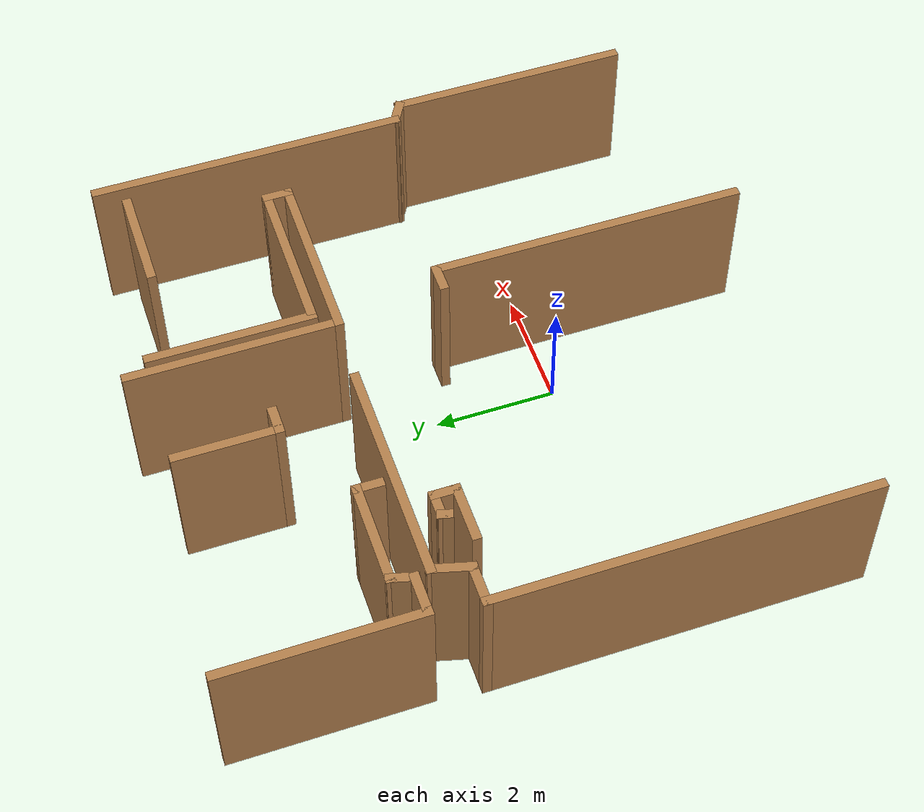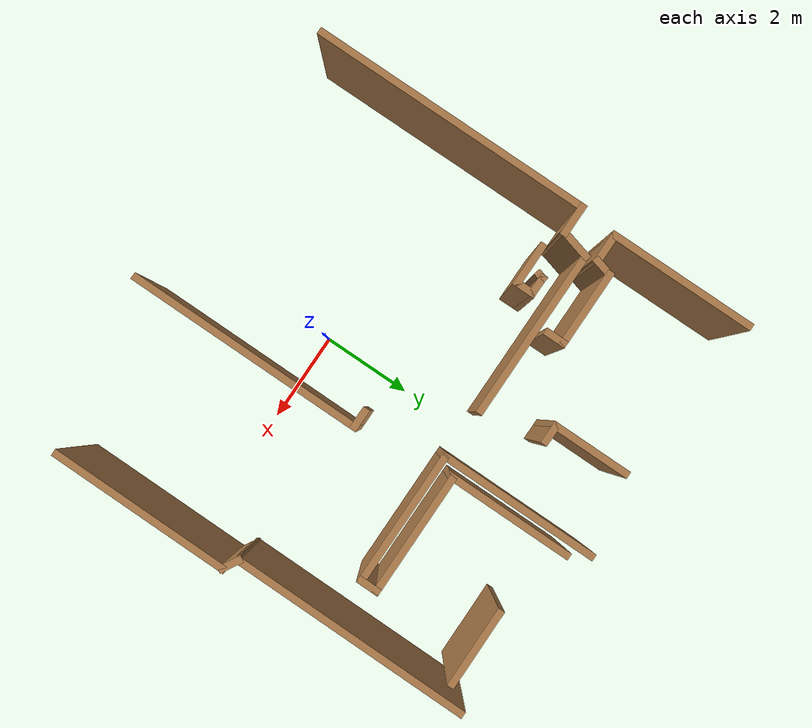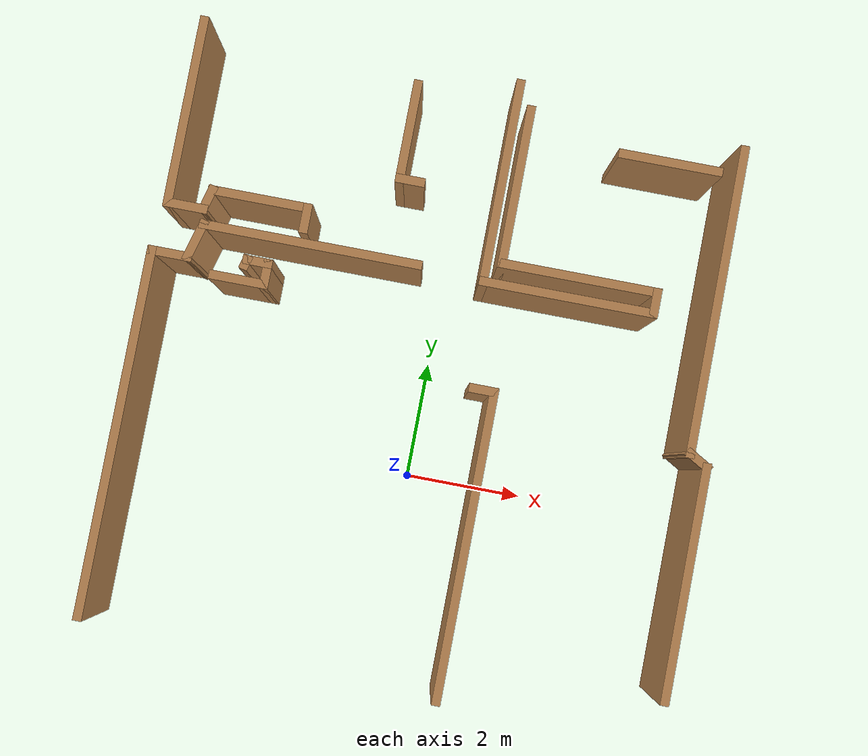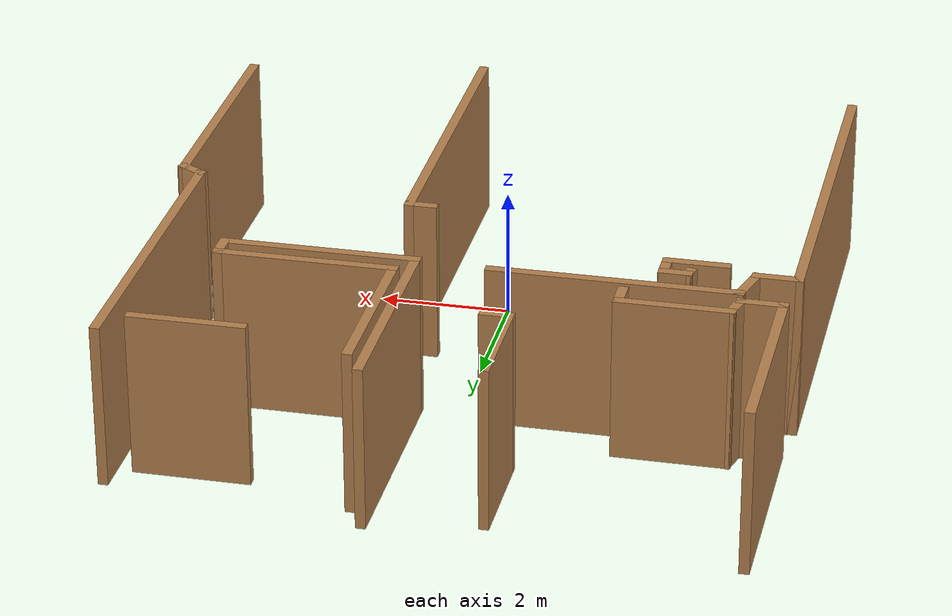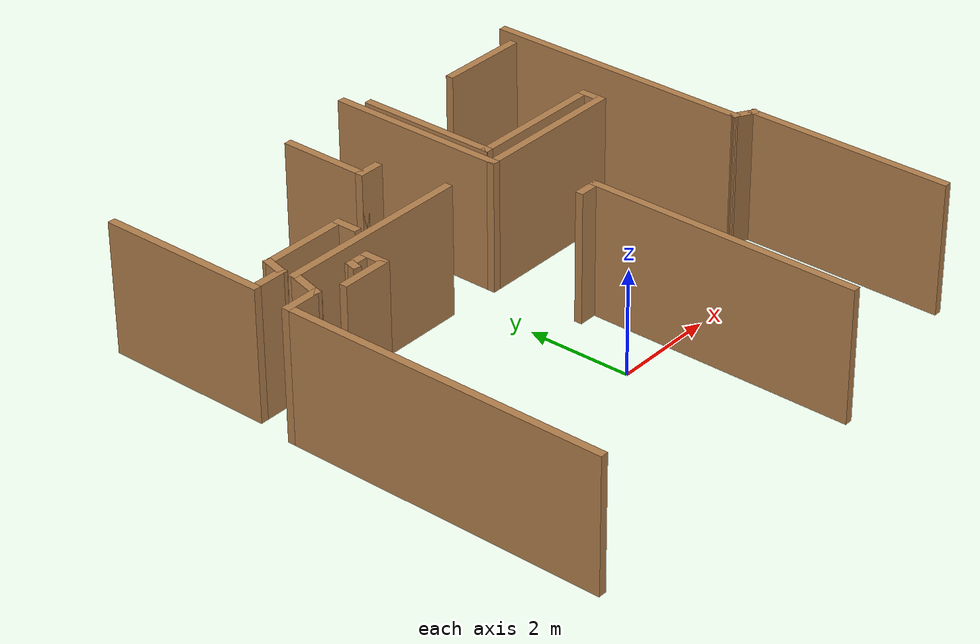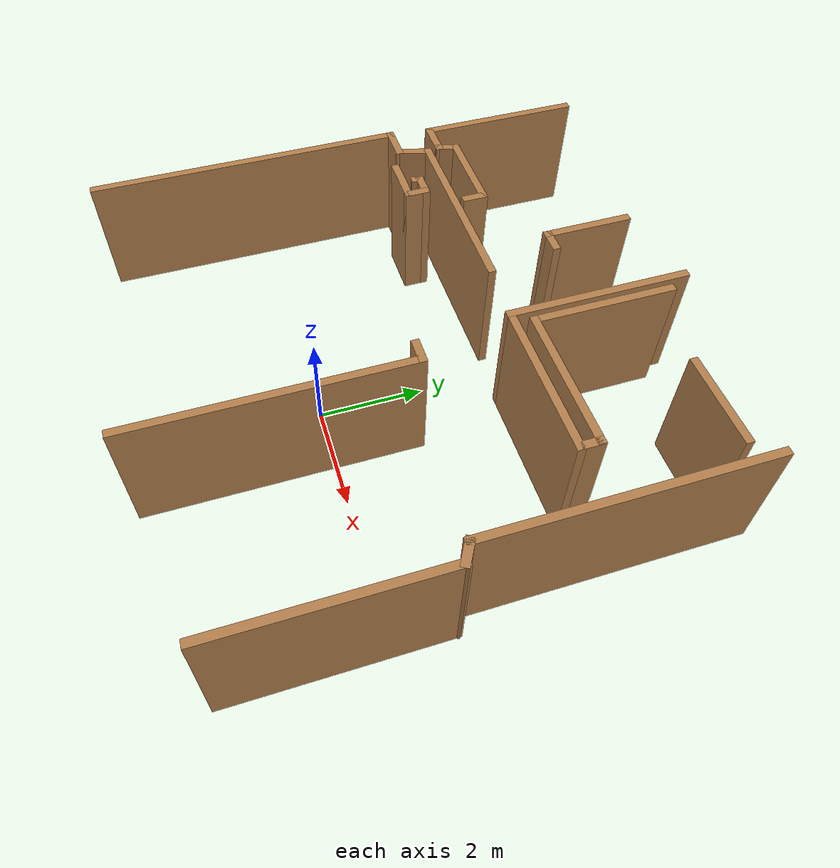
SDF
<sdf version="1.6">
 <model name="map_31">
  <link name="Wall_100">
   <pose>0.643586 5.04256 0 0 -0 1.5708</pose>
   <visual name="Wall_100_Visual">
    <pose>0 0 1.25 0 -0 0</pose>
    <geometry><box><size>3.5 0.15 2.5</size></box></geometry>
    <material>
     <script><uri>file://media/materials/scripts/gazebo.material</uri><name>Gazebo/Wood</name></script>
     <ambient>1 1 1 1</ambient>
     <shader type="pixel"/>
    </material>
    <meta><layer>0</layer></meta>
   </visual>
   <collision name="Wall_100_Collision">
    <pose>0 0 1.25 0 -0 0</pose>
    <geometry><box><size>3.5 0.15 2.5</size></box></geometry>
    <surface>
     <friction>
      <ode><mu>1</mu><mu2>1</mu2><fdir1>0 0 0</fdir1><slip1>0</slip1><slip2>0</slip2></ode>
      <torsional>
       <coefficient>1</coefficient>
       <patch_radius>0</patch_radius>
       <surface_radius>0</surface_radius>
       <use_patch_radius>1</use_patch_radius>
       <ode><slip>0</slip></ode>
      </torsional>
     </friction>
     <bounce><restitution_coefficient>0</restitution_coefficient><threshold>1e+06</threshold></bounce>
     <contact>
      <collide_without_contact>0</collide_without_contact>
      <collide_without_contact_bitmask>1</collide_without_contact_bitmask>
      <collide_bitmask>1</collide_bitmask>
      <ode>
       <soft_cfm>0</soft_cfm>
       <soft_erp>0.2</soft_erp>
       <kp>1e+13</kp>
       <kd>1</kd>
       <max_vel>0.01</max_vel>
       <min_depth>0</min_depth>
      </ode>
      <bullet>
       <split_impulse>1</split_impulse>
       <split_impulse_penetration_threshold>-0.01</split_impulse_penetration_threshold>
       <soft_cfm>0</soft_cfm>
       <soft_erp>0.2</soft_erp>
       <kp>1e+13</kp>
       <kd>1</kd>
      </bullet>
     </contact>
    </surface>
   </collision>
  </link>
  <link name="Wall_120">
   <pose>-0.854189 4.78949 0 0 -0 3.14159</pose>
   <visual name="Wall_120_Visual">
    <pose>0 0 1.25 0 -0 0</pose>
    <geometry><box><size>0.5 0.15 2.5</size></box></geometry>
    <material>
     <script><uri>file://media/materials/scripts/gazebo.material</uri><name>Gazebo/Wood</name></script>
     <ambient>1 1 1 1</ambient>
     <shader type="pixel"/>
    </material>
    <meta><layer>0</layer></meta>
   </visual>
   <collision name="Wall_120_Collision">
    <pose>0 0 1.25 0 -0 0</pose>
    <geometry><box><size>0.5 0.15 2.5</size></box></geometry>
    <surface>
     <friction>
      <ode><mu>1</mu><mu2>1</mu2><fdir1>0 0 0</fdir1><slip1>0</slip1><slip2>0</slip2></ode>
      <torsional>
       <coefficient>1</coefficient>
       <patch_radius>0</patch_radius>
       <surface_radius>0</surface_radius>
       <use_patch_radius>1</use_patch_radius>
       <ode><slip>0</slip></ode>
      </torsional>
     </friction>
     <bounce><restitution_coefficient>0</restitution_coefficient><threshold>1e+06</threshold></bounce>
     <contact>
      <collide_without_contact>0</collide_without_contact>
      <collide_without_contact_bitmask>1</collide_without_contact_bitmask>
      <collide_bitmask>1</collide_bitmask>
      <ode>
       <soft_cfm>0</soft_cfm>
       <soft_erp>0.2</soft_erp>
       <kp>1e+13</kp>
       <kd>1</kd>
       <max_vel>0.01</max_vel>
       <min_depth>0</min_depth>
      </ode>
      <bullet>
       <split_impulse>1</split_impulse>
       <split_impulse_penetration_threshold>-0.01</split_impulse_penetration_threshold>
       <soft_cfm>0</soft_cfm>
       <soft_erp>0.2</soft_erp>
       <kp>1e+13</kp>
       <kd>1</kd>
      </bullet>
     </contact>
    </surface>
   </collision>
  </link>
  <link name="Wall_124">
   <pose>-1.02919 5.58949 0 0 -0 1.5708</pose>
   <visual name="Wall_124_Visual">
    <pose>0 0 1.25 0 -0 0</pose>
    <geometry><box><size>1.75 0.15 2.5</size></box></geometry>
    <material>
     <script><uri>file://media/materials/scripts/gazebo.material</uri><name>Gazebo/Wood</name></script>
     <ambient>1 1 1 1</ambient>
     <shader type="pixel"/>
    </material>
    <meta><layer>0</layer></meta>
   </visual>
   <collision name="Wall_124_Collision">
    <pose>0 0 1.25 0 -0 0</pose>
    <geometry><box><size>1.75 0.15 2.5</size></box></geometry>
    <surface>
     <friction>
      <ode><mu>1</mu><mu2>1</mu2><fdir1>0 0 0</fdir1><slip1>0</slip1><slip2>0</slip2></ode>
      <torsional>
       <coefficient>1</coefficient>
       <patch_radius>0</patch_radius>
       <surface_radius>0</surface_radius>
       <use_patch_radius>1</use_patch_radius>
       <ode><slip>0</slip></ode>
      </torsional>
     </friction>
     <bounce><restitution_coefficient>0</restitution_coefficient><threshold>1e+06</threshold></bounce>
     <contact>
      <collide_without_contact>0</collide_without_contact>
      <collide_without_contact_bitmask>1</collide_without_contact_bitmask>
      <collide_bitmask>1</collide_bitmask>
      <ode>
       <soft_cfm>0</soft_cfm>
       <soft_erp>0.2</soft_erp>
       <kp>1e+13</kp>
       <kd>1</kd>
       <max_vel>0.01</max_vel>
       <min_depth>0</min_depth>
      </ode>
      <bullet>
       <split_impulse>1</split_impulse>
       <split_impulse_penetration_threshold>-0.01</split_impulse_penetration_threshold>
       <soft_cfm>0</soft_cfm>
       <soft_erp>0.2</soft_erp>
       <kp>1e+13</kp>
       <kd>1</kd>
      </bullet>
     </contact>
    </surface>
   </collision>
  </link>
  <link name="Wall_13">
   <pose>-2.26885 3.4345 0 0 -0 3.14159</pose>
   <visual name="Wall_13_Visual">
    <pose>0 0 1.25 0 -0 0</pose>
    <geometry><box><size>3.75 0.15 2.5</size></box></geometry>
    <material>
     <script><uri>file://media/materials/scripts/gazebo.material</uri><name>Gazebo/Wood</name></script>
     <ambient>1 1 1 1</ambient>
     <shader type="pixel"/>
    </material>
    <meta><layer>0</layer></meta>
   </visual>
   <collision name="Wall_13_Collision">
    <pose>0 0 1.25 0 -0 0</pose>
    <geometry><box><size>3.75 0.15 2.5</size></box></geometry>
    <surface>
     <friction>
      <ode><mu>1</mu><mu2>1</mu2><fdir1>0 0 0</fdir1><slip1>0</slip1><slip2>0</slip2></ode>
      <torsional>
       <coefficient>1</coefficient>
       <patch_radius>0</patch_radius>
       <surface_radius>0</surface_radius>
       <use_patch_radius>1</use_patch_radius>
       <ode><slip>0</slip></ode>
      </torsional>
     </friction>
     <bounce><restitution_coefficient>0</restitution_coefficient><threshold>1e+06</threshold></bounce>
     <contact>
      <collide_without_contact>0</collide_without_contact>
      <collide_without_contact_bitmask>1</collide_without_contact_bitmask>
      <collide_bitmask>1</collide_bitmask>
      <ode>
       <soft_cfm>0</soft_cfm>
       <soft_erp>0.2</soft_erp>
       <kp>1e+13</kp>
       <kd>1</kd>
       <max_vel>0.01</max_vel>
       <min_depth>0</min_depth>
      </ode>
      <bullet>
       <split_impulse>1</split_impulse>
       <split_impulse_penetration_threshold>-0.01</split_impulse_penetration_threshold>
       <soft_cfm>0</soft_cfm>
       <soft_erp>0.2</soft_erp>
       <kp>1e+13</kp>
       <kd>1</kd>
      </bullet>
     </contact>
    </surface>
   </collision>
  </link>
  <link name="Wall_130">
   <pose>3.32399 5.88389 0 0 -0 0</pose>
   <visual name="Wall_130_Visual">
    <pose>0 0 1.25 0 -0 0</pose>
    <geometry><box><size>1.75 0.15 2.5</size></box></geometry>
    <material>
     <script><uri>file://media/materials/scripts/gazebo.material</uri><name>Gazebo/Wood</name></script>
     <ambient>1 1 1 1</ambient>
     <shader type="pixel"/>
    </material>
    <meta><layer>0</layer></meta>
   </visual>
   <collision name="Wall_130_Collision">
    <pose>0 0 1.25 0 -0 0</pose>
    <geometry><box><size>1.75 0.15 2.5</size></box></geometry>
    <surface>
     <friction>
      <ode><mu>1</mu><mu2>1</mu2><fdir1>0 0 0</fdir1><slip1>0</slip1><slip2>0</slip2></ode>
      <torsional>
       <coefficient>1</coefficient>
       <patch_radius>0</patch_radius>
       <surface_radius>0</surface_radius>
       <use_patch_radius>1</use_patch_radius>
       <ode><slip>0</slip></ode>
      </torsional>
     </friction>
     <bounce><restitution_coefficient>0</restitution_coefficient><threshold>1e+06</threshold></bounce>
     <contact>
      <collide_without_contact>0</collide_without_contact>
      <collide_without_contact_bitmask>1</collide_without_contact_bitmask>
      <collide_bitmask>1</collide_bitmask>
      <ode>
       <soft_cfm>0</soft_cfm>
       <soft_erp>0.2</soft_erp>
       <kp>1e+13</kp>
       <kd>1</kd>
       <max_vel>0.01</max_vel>
       <min_depth>0</min_depth>
      </ode>
      <bullet>
       <split_impulse>1</split_impulse>
       <split_impulse_penetration_threshold>-0.01</split_impulse_penetration_threshold>
       <soft_cfm>0</soft_cfm>
       <soft_erp>0.2</soft_erp>
       <kp>1e+13</kp>
       <kd>1</kd>
      </bullet>
     </contact>
    </surface>
   </collision>
  </link>
  <link name="Wall_14">
   <pose>-4.1465 3.14472 0 0 0 -1.8326</pose>
   <visual name="Wall_14_Visual">
    <pose>0 0 1.25 0 -0 0</pose>
    <geometry><box><size>0.75 0.15 2.5</size></box></geometry>
    <material>
     <script><uri>file://media/materials/scripts/gazebo.material</uri><name>Gazebo/Wood</name></script>
     <ambient>1 1 1 1</ambient>
     <shader type="pixel"/>
    </material>
    <meta><layer>0</layer></meta>
   </visual>
   <collision name="Wall_14_Collision">
    <pose>0 0 1.25 0 -0 0</pose>
    <geometry><box><size>0.75 0.15 2.5</size></box></geometry>
    <surface>
     <friction>
      <ode><mu>1</mu><mu2>1</mu2><fdir1>0 0 0</fdir1><slip1>0</slip1><slip2>0</slip2></ode>
      <torsional>
       <coefficient>1</coefficient>
       <patch_radius>0</patch_radius>
       <surface_radius>0</surface_radius>
       <use_patch_radius>1</use_patch_radius>
       <ode><slip>0</slip></ode>
      </torsional>
     </friction>
     <bounce><restitution_coefficient>0</restitution_coefficient><threshold>1e+06</threshold></bounce>
     <contact>
      <collide_without_contact>0</collide_without_contact>
      <collide_without_contact_bitmask>1</collide_without_contact_bitmask>
      <collide_bitmask>1</collide_bitmask>
      <ode>
       <soft_cfm>0</soft_cfm>
       <soft_erp>0.2</soft_erp>
       <kp>1e+13</kp>
       <kd>1</kd>
       <max_vel>0.01</max_vel>
       <min_depth>0</min_depth>
      </ode>
      <bullet>
       <split_impulse>1</split_impulse>
       <split_impulse_penetration_threshold>-0.01</split_impulse_penetration_threshold>
       <soft_cfm>0</soft_cfm>
       <soft_erp>0.2</soft_erp>
       <kp>1e+13</kp>
       <kd>1</kd>
      </bullet>
     </contact>
    </surface>
   </collision>
  </link>
  <link name="Wall_141">
   <pose>-3.322 2.64133 0 0 -0 0</pose>
   <visual name="Wall_141_Visual">
    <pose>0 0 1.25 0 -0 0</pose>
    <geometry><box><size>1 0.15 2.5</size></box></geometry>
    <material>
     <script><uri>file://media/materials/scripts/gazebo.material</uri><name>Gazebo/Wood</name></script>
     <ambient>1 1 1 1</ambient>
     <shader type="pixel"/>
    </material>
    <meta><layer>0</layer></meta>
   </visual>
   <collision name="Wall_141_Collision">
    <pose>0 0 1.25 0 -0 0</pose>
    <geometry><box><size>1 0.15 2.5</size></box></geometry>
    <surface>
     <friction>
      <ode><mu>1</mu><mu2>1</mu2><fdir1>0 0 0</fdir1><slip1>0</slip1><slip2>0</slip2></ode>
      <torsional>
       <coefficient>1</coefficient>
       <patch_radius>0</patch_radius>
       <surface_radius>0</surface_radius>
       <use_patch_radius>1</use_patch_radius>
       <ode><slip>0</slip></ode>
      </torsional>
     </friction>
     <bounce><restitution_coefficient>0</restitution_coefficient><threshold>1e+06</threshold></bounce>
     <contact>
      <collide_without_contact>0</collide_without_contact>
      <collide_without_contact_bitmask>1</collide_without_contact_bitmask>
      <collide_bitmask>1</collide_bitmask>
      <ode>
       <soft_cfm>0</soft_cfm>
       <soft_erp>0.2</soft_erp>
       <kp>1e+13</kp>
       <kd>1</kd>
       <max_vel>0.01</max_vel>
       <min_depth>0</min_depth>
      </ode>
      <bullet>
       <split_impulse>1</split_impulse>
       <split_impulse_penetration_threshold>-0.01</split_impulse_penetration_threshold>
       <soft_cfm>0</soft_cfm>
       <soft_erp>0.2</soft_erp>
       <kp>1e+13</kp>
       <kd>1</kd>
      </bullet>
     </contact>
    </surface>
   </collision>
  </link>
  <link name="Wall_142">
   <pose>-2.897 2.81633 0 0 -0 1.5708</pose>
   <visual name="Wall_142_Visual">
    <pose>0 0 1.25 0 -0 0</pose>
    <geometry><box><size>0.5 0.15 2.5</size></box></geometry>
    <material>
     <script><uri>file://media/materials/scripts/gazebo.material</uri><name>Gazebo/Wood</name></script>
     <ambient>1 1 1 1</ambient>
     <shader type="pixel"/>
    </material>
    <meta><layer>0</layer></meta>
   </visual>
   <collision name="Wall_142_Collision">
    <pose>0 0 1.25 0 -0 0</pose>
    <geometry><box><size>0.5 0.15 2.5</size></box></geometry>
    <surface>
     <friction>
      <ode><mu>1</mu><mu2>1</mu2><fdir1>0 0 0</fdir1><slip1>0</slip1><slip2>0</slip2></ode>
      <torsional>
       <coefficient>1</coefficient>
       <patch_radius>0</patch_radius>
       <surface_radius>0</surface_radius>
       <use_patch_radius>1</use_patch_radius>
       <ode><slip>0</slip></ode>
      </torsional>
     </friction>
     <bounce><restitution_coefficient>0</restitution_coefficient><threshold>1e+06</threshold></bounce>
     <contact>
      <collide_without_contact>0</collide_without_contact>
      <collide_without_contact_bitmask>1</collide_without_contact_bitmask>
      <collide_bitmask>1</collide_bitmask>
      <ode>
       <soft_cfm>0</soft_cfm>
       <soft_erp>0.2</soft_erp>
       <kp>1e+13</kp>
       <kd>1</kd>
       <max_vel>0.01</max_vel>
       <min_depth>0</min_depth>
      </ode>
      <bullet>
       <split_impulse>1</split_impulse>
       <split_impulse_penetration_threshold>-0.01</split_impulse_penetration_threshold>
       <soft_cfm>0</soft_cfm>
       <soft_erp>0.2</soft_erp>
       <kp>1e+13</kp>
       <kd>1</kd>
      </bullet>
     </contact>
    </surface>
   </collision>
  </link>
  <link name="Wall_143">
   <pose>-3.072 2.99133 0 0 -0 3.14159</pose>
   <visual name="Wall_143_Visual">
    <pose>0 0 1.25 0 -0 0</pose>
    <geometry><box><size>0.5 0.15 2.5</size></box></geometry>
    <material>
     <script><uri>file://media/materials/scripts/gazebo.material</uri><name>Gazebo/Wood</name></script>
     <ambient>1 1 1 1</ambient>
     <shader type="pixel"/>
    </material>
    <meta><layer>0</layer></meta>
   </visual>
   <collision name="Wall_143_Collision">
    <pose>0 0 1.25 0 -0 0</pose>
    <geometry><box><size>0.5 0.15 2.5</size></box></geometry>
    <surface>
     <friction>
      <ode><mu>1</mu><mu2>1</mu2><fdir1>0 0 0</fdir1><slip1>0</slip1><slip2>0</slip2></ode>
      <torsional>
       <coefficient>1</coefficient>
       <patch_radius>0</patch_radius>
       <surface_radius>0</surface_radius>
       <use_patch_radius>1</use_patch_radius>
       <ode><slip>0</slip></ode>
      </torsional>
     </friction>
     <bounce><restitution_coefficient>0</restitution_coefficient><threshold>1e+06</threshold></bounce>
     <contact>
      <collide_without_contact>0</collide_without_contact>
      <collide_without_contact_bitmask>1</collide_without_contact_bitmask>
      <collide_bitmask>1</collide_bitmask>
      <ode>
       <soft_cfm>0</soft_cfm>
       <soft_erp>0.2</soft_erp>
       <kp>1e+13</kp>
       <kd>1</kd>
       <max_vel>0.01</max_vel>
       <min_depth>0</min_depth>
      </ode>
      <bullet>
       <split_impulse>1</split_impulse>
       <split_impulse_penetration_threshold>-0.01</split_impulse_penetration_threshold>
       <soft_cfm>0</soft_cfm>
       <soft_erp>0.2</soft_erp>
       <kp>1e+13</kp>
       <kd>1</kd>
      </bullet>
     </contact>
    </surface>
   </collision>
  </link>
  <link name="Wall_144">
   <pose>-3.25994 2.94303 0 0 0 -1.8326</pose>
   <visual name="Wall_144_Visual">
    <pose>0 0 1.25 0 -0 0</pose>
    <geometry><box><size>0.25 0.15 2.5</size></box></geometry>
    <material>
     <script><uri>file://media/materials/scripts/gazebo.material</uri><name>Gazebo/Wood</name></script>
     <ambient>1 1 1 1</ambient>
     <shader type="pixel"/>
    </material>
    <meta><layer>0</layer></meta>
   </visual>
   <collision name="Wall_144_Collision">
    <pose>0 0 1.25 0 -0 0</pose>
    <geometry><box><size>0.25 0.15 2.5</size></box></geometry>
    <surface>
     <friction>
      <ode><mu>1</mu><mu2>1</mu2><fdir1>0 0 0</fdir1><slip1>0</slip1><slip2>0</slip2></ode>
      <torsional>
       <coefficient>1</coefficient>
       <patch_radius>0</patch_radius>
       <surface_radius>0</surface_radius>
       <use_patch_radius>1</use_patch_radius>
       <ode><slip>0</slip></ode>
      </torsional>
     </friction>
     <bounce><restitution_coefficient>0</restitution_coefficient><threshold>1e+06</threshold></bounce>
     <contact>
      <collide_without_contact>0</collide_without_contact>
      <collide_without_contact_bitmask>1</collide_without_contact_bitmask>
      <collide_bitmask>1</collide_bitmask>
      <ode>
       <soft_cfm>0</soft_cfm>
       <soft_erp>0.2</soft_erp>
       <kp>1e+13</kp>
       <kd>1</kd>
       <max_vel>0.01</max_vel>
       <min_depth>0</min_depth>
      </ode>
      <bullet>
       <split_impulse>1</split_impulse>
       <split_impulse_penetration_threshold>-0.01</split_impulse_penetration_threshold>
       <soft_cfm>0</soft_cfm>
       <soft_erp>0.2</soft_erp>
       <kp>1e+13</kp>
       <kd>1</kd>
      </bullet>
     </contact>
    </surface>
   </collision>
  </link>
  <link name="Wall_17">
   <pose>-4.52415 2.85494 0 0 -0 3.14159</pose>
   <visual name="Wall_17_Visual">
    <pose>0 0 1.25 0 -0 0</pose>
    <geometry><box><size>0.75 0.15 2.5</size></box></geometry>
    <material>
     <script><uri>file://media/materials/scripts/gazebo.material</uri><name>Gazebo/Wood</name></script>
     <ambient>1 1 1 1</ambient>
     <shader type="pixel"/>
    </material>
    <meta><layer>0</layer></meta>
   </visual>
   <collision name="Wall_17_Collision">
    <pose>0 0 1.25 0 -0 0</pose>
    <geometry><box><size>0.75 0.15 2.5</size></box></geometry>
    <surface>
     <friction>
      <ode><mu>1</mu><mu2>1</mu2><fdir1>0 0 0</fdir1><slip1>0</slip1><slip2>0</slip2></ode>
      <torsional>
       <coefficient>1</coefficient>
       <patch_radius>0</patch_radius>
       <surface_radius>0</surface_radius>
       <use_patch_radius>1</use_patch_radius>
       <ode><slip>0</slip></ode>
      </torsional>
     </friction>
     <bounce><restitution_coefficient>0</restitution_coefficient><threshold>1e+06</threshold></bounce>
     <contact>
      <collide_without_contact>0</collide_without_contact>
      <collide_without_contact_bitmask>1</collide_without_contact_bitmask>
      <collide_bitmask>1</collide_bitmask>
      <ode>
       <soft_cfm>0</soft_cfm>
       <soft_erp>0.2</soft_erp>
       <kp>1e+13</kp>
       <kd>1</kd>
       <max_vel>0.01</max_vel>
       <min_depth>0</min_depth>
      </ode>
      <bullet>
       <split_impulse>1</split_impulse>
       <split_impulse_penetration_threshold>-0.01</split_impulse_penetration_threshold>
       <soft_cfm>0</soft_cfm>
       <soft_erp>0.2</soft_erp>
       <kp>1e+13</kp>
       <kd>1</kd>
      </bullet>
     </contact>
    </surface>
   </collision>
  </link>
  <link name="Wall_18">
   <pose>-4.82415 -0.195058 0 0 0 -1.5708</pose>
   <visual name="Wall_18_Visual">
    <pose>0 0 1.25 0 -0 0</pose>
    <geometry><box><size>6.25 0.15 2.5</size></box></geometry>
    <material>
     <script><uri>file://media/materials/scripts/gazebo.material</uri><name>Gazebo/Wood</name></script>
     <ambient>1 1 1 1</ambient>
     <shader type="pixel"/>
    </material>
    <meta><layer>0</layer></meta>
   </visual>
   <collision name="Wall_18_Collision">
    <pose>0 0 1.25 0 -0 0</pose>
    <geometry><box><size>6.25 0.15 2.5</size></box></geometry>
    <surface>
     <friction>
      <ode><mu>1</mu><mu2>1</mu2><fdir1>0 0 0</fdir1><slip1>0</slip1><slip2>0</slip2></ode>
      <torsional>
       <coefficient>1</coefficient>
       <patch_radius>0</patch_radius>
       <surface_radius>0</surface_radius>
       <use_patch_radius>1</use_patch_radius>
       <ode><slip>0</slip></ode>
      </torsional>
     </friction>
     <bounce><restitution_coefficient>0</restitution_coefficient><threshold>1e+06</threshold></bounce>
     <contact>
      <collide_without_contact>0</collide_without_contact>
      <collide_without_contact_bitmask>1</collide_without_contact_bitmask>
      <collide_bitmask>1</collide_bitmask>
      <ode>
       <soft_cfm>0</soft_cfm>
       <soft_erp>0.2</soft_erp>
       <kp>1e+13</kp>
       <kd>1</kd>
       <max_vel>0.01</max_vel>
       <min_depth>0</min_depth>
      </ode>
      <bullet>
       <split_impulse>1</split_impulse>
       <split_impulse_penetration_threshold>-0.01</split_impulse_penetration_threshold>
       <soft_cfm>0</soft_cfm>
       <soft_erp>0.2</soft_erp>
       <kp>1e+13</kp>
       <kd>1</kd>
      </bullet>
     </contact>
    </surface>
   </collision>
  </link>
  <link name="Wall_5">
   <pose>-4.72196 5.23134 0 0 0 -1.5708</pose>
   <visual name="Wall_5_Visual">
    <pose>0 0 1.25 0 -0 0</pose>
    <geometry><box><size>3.25 0.15 2.5</size></box></geometry>
    <material>
     <script><uri>file://media/materials/scripts/gazebo.material</uri><name>Gazebo/Wood</name></script>
     <ambient>1 1 1 1</ambient>
     <shader type="pixel"/>
    </material>
    <meta><layer>0</layer></meta>
   </visual>
   <collision name="Wall_5_Collision">
    <pose>0 0 1.25 0 -0 0</pose>
    <geometry><box><size>3.25 0.15 2.5</size></box></geometry>
    <surface>
     <friction>
      <ode><mu>1</mu><mu2>1</mu2><fdir1>0 0 0</fdir1><slip1>0</slip1><slip2>0</slip2></ode>
      <torsional>
       <coefficient>1</coefficient>
       <patch_radius>0</patch_radius>
       <surface_radius>0</surface_radius>
       <use_patch_radius>1</use_patch_radius>
       <ode><slip>0</slip></ode>
      </torsional>
     </friction>
     <bounce><restitution_coefficient>0</restitution_coefficient><threshold>1e+06</threshold></bounce>
     <contact>
      <collide_without_contact>0</collide_without_contact>
      <collide_without_contact_bitmask>1</collide_without_contact_bitmask>
      <collide_bitmask>1</collide_bitmask>
      <ode>
       <soft_cfm>0</soft_cfm>
       <soft_erp>0.2</soft_erp>
       <kp>1e+13</kp>
       <kd>1</kd>
       <max_vel>0.01</max_vel>
       <min_depth>0</min_depth>
      </ode>
      <bullet>
       <split_impulse>1</split_impulse>
       <split_impulse_penetration_threshold>-0.01</split_impulse_penetration_threshold>
       <soft_cfm>0</soft_cfm>
       <soft_erp>0.2</soft_erp>
       <kp>1e+13</kp>
       <kd>1</kd>
      </bullet>
     </contact>
    </surface>
   </collision>
  </link>
  <link name="Wall_6">
   <pose>-4.42196 3.68134 0 0 -0 0</pose>
   <visual name="Wall_6_Visual">
    <pose>0 0 1.25 0 -0 0</pose>
    <geometry><box><size>0.75 0.15 2.5</size></box></geometry>
    <material>
     <script><uri>file://media/materials/scripts/gazebo.material</uri><name>Gazebo/Wood</name></script>
     <ambient>1 1 1 1</ambient>
     <shader type="pixel"/>
    </material>
    <meta><layer>0</layer></meta>
   </visual>
   <collision name="Wall_6_Collision">
    <pose>0 0 1.25 0 -0 0</pose>
    <geometry><box><size>0.75 0.15 2.5</size></box></geometry>
    <surface>
     <friction>
      <ode><mu>1</mu><mu2>1</mu2><fdir1>0 0 0</fdir1><slip1>0</slip1><slip2>0</slip2></ode>
      <torsional>
       <coefficient>1</coefficient>
       <patch_radius>0</patch_radius>
       <surface_radius>0</surface_radius>
       <use_patch_radius>1</use_patch_radius>
       <ode><slip>0</slip></ode>
      </torsional>
     </friction>
     <bounce><restitution_coefficient>0</restitution_coefficient><threshold>1e+06</threshold></bounce>
     <contact>
      <collide_without_contact>0</collide_without_contact>
      <collide_without_contact_bitmask>1</collide_without_contact_bitmask>
      <collide_bitmask>1</collide_bitmask>
      <ode>
       <soft_cfm>0</soft_cfm>
       <soft_erp>0.2</soft_erp>
       <kp>1e+13</kp>
       <kd>1</kd>
       <max_vel>0.01</max_vel>
       <min_depth>0</min_depth>
      </ode>
      <bullet>
       <split_impulse>1</split_impulse>
       <split_impulse_penetration_threshold>-0.01</split_impulse_penetration_threshold>
       <soft_cfm>0</soft_cfm>
       <soft_erp>0.2</soft_erp>
       <kp>1e+13</kp>
       <kd>1</kd>
      </bullet>
     </contact>
    </surface>
   </collision>
  </link>
  <link name="Wall_7">
   <pose>-4.07667 3.85038 0 0 -0 1.309</pose>
   <visual name="Wall_7_Visual">
    <pose>0 0 1.25 0 -0 0</pose>
    <geometry><box><size>0.5 0.15 2.5</size></box></geometry>
    <material>
     <script><uri>file://media/materials/scripts/gazebo.material</uri><name>Gazebo/Wood</name></script>
     <ambient>1 1 1 1</ambient>
     <shader type="pixel"/>
    </material>
    <meta><layer>0</layer></meta>
   </visual>
   <collision name="Wall_7_Collision">
    <pose>0 0 1.25 0 -0 0</pose>
    <geometry><box><size>0.5 0.15 2.5</size></box></geometry>
    <surface>
     <friction>
      <ode><mu>1</mu><mu2>1</mu2><fdir1>0 0 0</fdir1><slip1>0</slip1><slip2>0</slip2></ode>
      <torsional>
       <coefficient>1</coefficient>
       <patch_radius>0</patch_radius>
       <surface_radius>0</surface_radius>
       <use_patch_radius>1</use_patch_radius>
       <ode><slip>0</slip></ode>
      </torsional>
     </friction>
     <bounce><restitution_coefficient>0</restitution_coefficient><threshold>1e+06</threshold></bounce>
     <contact>
      <collide_without_contact>0</collide_without_contact>
      <collide_without_contact_bitmask>1</collide_without_contact_bitmask>
      <collide_bitmask>1</collide_bitmask>
      <ode>
       <soft_cfm>0</soft_cfm>
       <soft_erp>0.2</soft_erp>
       <kp>1e+13</kp>
       <kd>1</kd>
       <max_vel>0.01</max_vel>
       <min_depth>0</min_depth>
      </ode>
      <bullet>
       <split_impulse>1</split_impulse>
       <split_impulse_penetration_threshold>-0.01</split_impulse_penetration_threshold>
       <soft_cfm>0</soft_cfm>
       <soft_erp>0.2</soft_erp>
       <kp>1e+13</kp>
       <kd>1</kd>
      </bullet>
     </contact>
    </surface>
   </collision>
  </link>
  <link name="Wall_8">
   <pose>-3.23137 4.01941 0 0 -0 0</pose>
   <visual name="Wall_8_Visual">
    <pose>0 0 1.25 0 -0 0</pose>
    <geometry><box><size>1.75 0.15 2.5</size></box></geometry>
    <material>
     <script><uri>file://media/materials/scripts/gazebo.material</uri><name>Gazebo/Wood</name></script>
     <ambient>1 1 1 1</ambient>
     <shader type="pixel"/>
    </material>
    <meta><layer>0</layer></meta>
   </visual>
   <collision name="Wall_8_Collision">
    <pose>0 0 1.25 0 -0 0</pose>
    <geometry><box><size>1.75 0.15 2.5</size></box></geometry>
    <surface>
     <friction>
      <ode><mu>1</mu><mu2>1</mu2><fdir1>0 0 0</fdir1><slip1>0</slip1><slip2>0</slip2></ode>
      <torsional>
       <coefficient>1</coefficient>
       <patch_radius>0</patch_radius>
       <surface_radius>0</surface_radius>
       <use_patch_radius>1</use_patch_radius>
       <ode><slip>0</slip></ode>
      </torsional>
     </friction>
     <bounce><restitution_coefficient>0</restitution_coefficient><threshold>1e+06</threshold></bounce>
     <contact>
      <collide_without_contact>0</collide_without_contact>
      <collide_without_contact_bitmask>1</collide_without_contact_bitmask>
      <collide_bitmask>1</collide_bitmask>
      <ode>
       <soft_cfm>0</soft_cfm>
       <soft_erp>0.2</soft_erp>
       <kp>1e+13</kp>
       <kd>1</kd>
       <max_vel>0.01</max_vel>
       <min_depth>0</min_depth>
      </ode>
      <bullet>
       <split_impulse>1</split_impulse>
       <split_impulse_penetration_threshold>-0.01</split_impulse_penetration_threshold>
       <soft_cfm>0</soft_cfm>
       <soft_erp>0.2</soft_erp>
       <kp>1e+13</kp>
       <kd>1</kd>
      </bullet>
     </contact>
    </surface>
   </collision>
  </link>
  <link name="Wall_83">
   <pose>0.981109 1.60448 0 0 -0 0</pose>
   <visual name="Wall_83_Visual">
    <pose>0 0 1.25 0 -0 0</pose>
    <geometry><box><size>0.5 0.15 2.5</size></box></geometry>
    <material>
     <script><uri>file://media/materials/scripts/gazebo.material</uri><name>Gazebo/Wood</name></script>
     <ambient>1 1 1 1</ambient>
     <shader type="pixel"/>
    </material>
    <meta><layer>0</layer></meta>
   </visual>
   <collision name="Wall_83_Collision">
    <pose>0 0 1.25 0 -0 0</pose>
    <geometry><box><size>0.5 0.15 2.5</size></box></geometry>
    <surface>
     <friction>
      <ode><mu>1</mu><mu2>1</mu2><fdir1>0 0 0</fdir1><slip1>0</slip1><slip2>0</slip2></ode>
      <torsional>
       <coefficient>1</coefficient>
       <patch_radius>0</patch_radius>
       <surface_radius>0</surface_radius>
       <use_patch_radius>1</use_patch_radius>
       <ode><slip>0</slip></ode>
      </torsional>
     </friction>
     <bounce><restitution_coefficient>0</restitution_coefficient><threshold>1e+06</threshold></bounce>
     <contact>
      <collide_without_contact>0</collide_without_contact>
      <collide_without_contact_bitmask>1</collide_without_contact_bitmask>
      <collide_bitmask>1</collide_bitmask>
      <ode>
       <soft_cfm>0</soft_cfm>
       <soft_erp>0.2</soft_erp>
       <kp>1e+13</kp>
       <kd>1</kd>
       <max_vel>0.01</max_vel>
       <min_depth>0</min_depth>
      </ode>
      <bullet>
       <split_impulse>1</split_impulse>
       <split_impulse_penetration_threshold>-0.01</split_impulse_penetration_threshold>
       <soft_cfm>0</soft_cfm>
       <soft_erp>0.2</soft_erp>
       <kp>1e+13</kp>
       <kd>1</kd>
      </bullet>
     </contact>
    </surface>
   </collision>
  </link>
  <link name="Wall_86">
   <pose>1.15611 -0.945518 0 0 0 -1.5708</pose>
   <visual name="Wall_86_Visual">
    <pose>0 0 1.25 0 -0 0</pose>
    <geometry><box><size>5.25 0.15 2.5</size></box></geometry>
    <material>
     <script><uri>file://media/materials/scripts/gazebo.material</uri><name>Gazebo/Wood</name></script>
     <ambient>1 1 1 1</ambient>
     <shader type="pixel"/>
    </material>
    <meta><layer>0</layer></meta>
   </visual>
   <collision name="Wall_86_Collision">
    <pose>0 0 1.25 0 -0 0</pose>
    <geometry><box><size>5.25 0.15 2.5</size></box></geometry>
    <surface>
     <friction>
      <ode><mu>1</mu><mu2>1</mu2><fdir1>0 0 0</fdir1><slip1>0</slip1><slip2>0</slip2></ode>
      <torsional>
       <coefficient>1</coefficient>
       <patch_radius>0</patch_radius>
       <surface_radius>0</surface_radius>
       <use_patch_radius>1</use_patch_radius>
       <ode><slip>0</slip></ode>
      </torsional>
     </friction>
     <bounce><restitution_coefficient>0</restitution_coefficient><threshold>1e+06</threshold></bounce>
     <contact>
      <collide_without_contact>0</collide_without_contact>
      <collide_without_contact_bitmask>1</collide_without_contact_bitmask>
      <collide_bitmask>1</collide_bitmask>
      <ode>
       <soft_cfm>0</soft_cfm>
       <soft_erp>0.2</soft_erp>
       <kp>1e+13</kp>
       <kd>1</kd>
       <max_vel>0.01</max_vel>
       <min_depth>0</min_depth>
      </ode>
      <bullet>
       <split_impulse>1</split_impulse>
       <split_impulse_penetration_threshold>-0.01</split_impulse_penetration_threshold>
       <soft_cfm>0</soft_cfm>
       <soft_erp>0.2</soft_erp>
       <kp>1e+13</kp>
       <kd>1</kd>
      </bullet>
     </contact>
    </surface>
   </collision>
  </link>
  <link name="Wall_9">
   <pose>-2.43137 3.84441 0 0 0 -1.5708</pose>
   <visual name="Wall_9_Visual">
    <pose>0 0 1.25 0 -0 0</pose>
    <geometry><box><size>0.5 0.15 2.5</size></box></geometry>
    <material>
     <script><uri>file://media/materials/scripts/gazebo.material</uri><name>Gazebo/Wood</name></script>
     <ambient>1 1 1 1</ambient>
     <shader type="pixel"/>
    </material>
    <meta><layer>0</layer></meta>
   </visual>
   <collision name="Wall_9_Collision">
    <pose>0 0 1.25 0 -0 0</pose>
    <geometry><box><size>0.5 0.15 2.5</size></box></geometry>
    <surface>
     <friction>
      <ode><mu>1</mu><mu2>1</mu2><fdir1>0 0 0</fdir1><slip1>0</slip1><slip2>0</slip2></ode>
      <torsional>
       <coefficient>1</coefficient>
       <patch_radius>0</patch_radius>
       <surface_radius>0</surface_radius>
       <use_patch_radius>1</use_patch_radius>
       <ode><slip>0</slip></ode>
      </torsional>
     </friction>
     <bounce><restitution_coefficient>0</restitution_coefficient><threshold>1e+06</threshold></bounce>
     <contact>
      <collide_without_contact>0</collide_without_contact>
      <collide_without_contact_bitmask>1</collide_without_contact_bitmask>
      <collide_bitmask>1</collide_bitmask>
      <ode>
       <soft_cfm>0</soft_cfm>
       <soft_erp>0.2</soft_erp>
       <kp>1e+13</kp>
       <kd>1</kd>
       <max_vel>0.01</max_vel>
       <min_depth>0</min_depth>
      </ode>
      <bullet>
       <split_impulse>1</split_impulse>
       <split_impulse_penetration_threshold>-0.01</split_impulse_penetration_threshold>
       <soft_cfm>0</soft_cfm>
       <soft_erp>0.2</soft_erp>
       <kp>1e+13</kp>
       <kd>1</kd>
      </bullet>
     </contact>
    </surface>
   </collision>
  </link>
  <link name="Wall_92">
   <pose>4.79669 -0.882443 0 0 -0 1.5708</pose>
   <visual name="Wall_92_Visual">
    <pose>0 0 1.25 0 -0 0</pose>
    <geometry><box><size>4 0.15 2.5</size></box></geometry>
    <material>
     <script><uri>file://media/materials/scripts/gazebo.material</uri><name>Gazebo/Wood</name></script>
     <ambient>1 1 1 1</ambient>
     <shader type="pixel"/>
    </material>
    <meta><layer>0</layer></meta>
   </visual>
   <collision name="Wall_92_Collision">
    <pose>0 0 1.25 0 -0 0</pose>
    <geometry><box><size>4 0.15 2.5</size></box></geometry>
    <surface>
     <friction>
      <ode><mu>1</mu><mu2>1</mu2><fdir1>0 0 0</fdir1><slip1>0</slip1><slip2>0</slip2></ode>
      <torsional>
       <coefficient>1</coefficient>
       <patch_radius>0</patch_radius>
       <surface_radius>0</surface_radius>
       <use_patch_radius>1</use_patch_radius>
       <ode><slip>0</slip></ode>
      </torsional>
     </friction>
     <bounce><restitution_coefficient>0</restitution_coefficient><threshold>1e+06</threshold></bounce>
     <contact>
      <collide_without_contact>0</collide_without_contact>
      <collide_without_contact_bitmask>1</collide_without_contact_bitmask>
      <collide_bitmask>1</collide_bitmask>
      <ode>
       <soft_cfm>0</soft_cfm>
       <soft_erp>0.2</soft_erp>
       <kp>1e+13</kp>
       <kd>1</kd>
       <max_vel>0.01</max_vel>
       <min_depth>0</min_depth>
      </ode>
      <bullet>
       <split_impulse>1</split_impulse>
       <split_impulse_penetration_threshold>-0.01</split_impulse_penetration_threshold>
       <soft_cfm>0</soft_cfm>
       <soft_erp>0.2</soft_erp>
       <kp>1e+13</kp>
       <kd>1</kd>
      </bullet>
     </contact>
    </surface>
   </collision>
  </link>
  <link name="Wall_93">
   <pose>4.64514 1.13006 0 0 -0 2.61799</pose>
   <visual name="Wall_93_Visual">
    <pose>0 0 1.25 0 -0 0</pose>
    <geometry><box><size>0.5 0.15 2.5</size></box></geometry>
    <material>
     <script><uri>file://media/materials/scripts/gazebo.material</uri><name>Gazebo/Wood</name></script>
     <ambient>1 1 1 1</ambient>
     <shader type="pixel"/>
    </material>
    <meta><layer>0</layer></meta>
   </visual>
   <collision name="Wall_93_Collision">
    <pose>0 0 1.25 0 -0 0</pose>
    <geometry><box><size>0.5 0.15 2.5</size></box></geometry>
    <surface>
     <friction>
      <ode><mu>1</mu><mu2>1</mu2><fdir1>0 0 0</fdir1><slip1>0</slip1><slip2>0</slip2></ode>
      <torsional>
       <coefficient>1</coefficient>
       <patch_radius>0</patch_radius>
       <surface_radius>0</surface_radius>
       <use_patch_radius>1</use_patch_radius>
       <ode><slip>0</slip></ode>
      </torsional>
     </friction>
     <bounce><restitution_coefficient>0</restitution_coefficient><threshold>1e+06</threshold></bounce>
     <contact>
      <collide_without_contact>0</collide_without_contact>
      <collide_without_contact_bitmask>1</collide_without_contact_bitmask>
      <collide_bitmask>1</collide_bitmask>
      <ode>
       <soft_cfm>0</soft_cfm>
       <soft_erp>0.2</soft_erp>
       <kp>1e+13</kp>
       <kd>1</kd>
       <max_vel>0.01</max_vel>
       <min_depth>0</min_depth>
      </ode>
      <bullet>
       <split_impulse>1</split_impulse>
       <split_impulse_penetration_threshold>-0.01</split_impulse_penetration_threshold>
       <soft_cfm>0</soft_cfm>
       <soft_erp>0.2</soft_erp>
       <kp>1e+13</kp>
       <kd>1</kd>
      </bullet>
     </contact>
    </surface>
   </collision>
  </link>
  <link name="Wall_94">
   <pose>4.49359 3.76756 0 0 -0 1.5708</pose>
   <visual name="Wall_94_Visual">
    <pose>0 0 1.25 0 -0 0</pose>
    <geometry><box><size>5.25 0.15 2.5</size></box></geometry>
    <material>
     <script><uri>file://media/materials/scripts/gazebo.material</uri><name>Gazebo/Wood</name></script>
     <ambient>1 1 1 1</ambient>
     <shader type="pixel"/>
    </material>
    <meta><layer>0</layer></meta>
   </visual>
   <collision name="Wall_94_Collision">
    <pose>0 0 1.25 0 -0 0</pose>
    <geometry><box><size>5.25 0.15 2.5</size></box></geometry>
    <surface>
     <friction>
      <ode><mu>1</mu><mu2>1</mu2><fdir1>0 0 0</fdir1><slip1>0</slip1><slip2>0</slip2></ode>
      <torsional>
       <coefficient>1</coefficient>
       <patch_radius>0</patch_radius>
       <surface_radius>0</surface_radius>
       <use_patch_radius>1</use_patch_radius>
       <ode><slip>0</slip></ode>
      </torsional>
     </friction>
     <bounce><restitution_coefficient>0</restitution_coefficient><threshold>1e+06</threshold></bounce>
     <contact>
      <collide_without_contact>0</collide_without_contact>
      <collide_without_contact_bitmask>1</collide_without_contact_bitmask>
      <collide_bitmask>1</collide_bitmask>
      <ode>
       <soft_cfm>0</soft_cfm>
       <soft_erp>0.2</soft_erp>
       <kp>1e+13</kp>
       <kd>1</kd>
       <max_vel>0.01</max_vel>
       <min_depth>0</min_depth>
      </ode>
      <bullet>
       <split_impulse>1</split_impulse>
       <split_impulse_penetration_threshold>-0.01</split_impulse_penetration_threshold>
       <soft_cfm>0</soft_cfm>
       <soft_erp>0.2</soft_erp>
       <kp>1e+13</kp>
       <kd>1</kd>
      </bullet>
     </contact>
    </surface>
   </collision>
  </link>
  <link name="Wall_96">
   <pose>0.893586 5.01756 0 0 0 -1.5708</pose>
   <visual name="Wall_96_Visual">
    <pose>0 0 1.25 0 -0 0</pose>
    <geometry><box><size>2.75 0.15 2.5</size></box></geometry>
    <material>
     <script><uri>file://media/materials/scripts/gazebo.material</uri><name>Gazebo/Wood</name></script>
     <ambient>1 1 1 1</ambient>
     <shader type="pixel"/>
    </material>
    <meta><layer>0</layer></meta>
   </visual>
   <collision name="Wall_96_Collision">
    <pose>0 0 1.25 0 -0 0</pose>
    <geometry><box><size>2.75 0.15 2.5</size></box></geometry>
    <surface>
     <friction>
      <ode><mu>1</mu><mu2>1</mu2><fdir1>0 0 0</fdir1><slip1>0</slip1><slip2>0</slip2></ode>
      <torsional>
       <coefficient>1</coefficient>
       <patch_radius>0</patch_radius>
       <surface_radius>0</surface_radius>
       <use_patch_radius>1</use_patch_radius>
       <ode><slip>0</slip></ode>
      </torsional>
     </friction>
     <bounce><restitution_coefficient>0</restitution_coefficient><threshold>1e+06</threshold></bounce>
     <contact>
      <collide_without_contact>0</collide_without_contact>
      <collide_without_contact_bitmask>1</collide_without_contact_bitmask>
      <collide_bitmask>1</collide_bitmask>
      <ode>
       <soft_cfm>0</soft_cfm>
       <soft_erp>0.2</soft_erp>
       <kp>1e+13</kp>
       <kd>1</kd>
       <max_vel>0.01</max_vel>
       <min_depth>0</min_depth>
      </ode>
      <bullet>
       <split_impulse>1</split_impulse>
       <split_impulse_penetration_threshold>-0.01</split_impulse_penetration_threshold>
       <soft_cfm>0</soft_cfm>
       <soft_erp>0.2</soft_erp>
       <kp>1e+13</kp>
       <kd>1</kd>
      </bullet>
     </contact>
    </surface>
   </collision>
  </link>
  <link name="Wall_97">
   <pose>2.19359 3.71756 0 0 -0 0</pose>
   <visual name="Wall_97_Visual">
    <pose>0 0 1.25 0 -0 0</pose>
    <geometry><box><size>2.75 0.15 2.5</size></box></geometry>
    <material>
     <script><uri>file://media/materials/scripts/gazebo.material</uri><name>Gazebo/Wood</name></script>
     <ambient>1 1 1 1</ambient>
     <shader type="pixel"/>
    </material>
    <meta><layer>0</layer></meta>
   </visual>
   <collision name="Wall_97_Collision">
    <pose>0 0 1.25 0 -0 0</pose>
    <geometry><box><size>2.75 0.15 2.5</size></box></geometry>
    <surface>
     <friction>
      <ode><mu>1</mu><mu2>1</mu2><fdir1>0 0 0</fdir1><slip1>0</slip1><slip2>0</slip2></ode>
      <torsional>
       <coefficient>1</coefficient>
       <patch_radius>0</patch_radius>
       <surface_radius>0</surface_radius>
       <use_patch_radius>1</use_patch_radius>
       <ode><slip>0</slip></ode>
      </torsional>
     </friction>
     <bounce><restitution_coefficient>0</restitution_coefficient><threshold>1e+06</threshold></bounce>
     <contact>
      <collide_without_contact>0</collide_without_contact>
      <collide_without_contact_bitmask>1</collide_without_contact_bitmask>
      <collide_bitmask>1</collide_bitmask>
      <ode>
       <soft_cfm>0</soft_cfm>
       <soft_erp>0.2</soft_erp>
       <kp>1e+13</kp>
       <kd>1</kd>
       <max_vel>0.01</max_vel>
       <min_depth>0</min_depth>
      </ode>
      <bullet>
       <split_impulse>1</split_impulse>
       <split_impulse_penetration_threshold>-0.01</split_impulse_penetration_threshold>
       <soft_cfm>0</soft_cfm>
       <soft_erp>0.2</soft_erp>
       <kp>1e+13</kp>
       <kd>1</kd>
      </bullet>
     </contact>
    </surface>
   </collision>
  </link>
  <link name="Wall_98">
   <pose>3.49359 3.54256 0 0 0 -1.5708</pose>
   <visual name="Wall_98_Visual">
    <pose>0 0 1.25 0 -0 0</pose>
    <geometry><box><size>0.5 0.15 2.5</size></box></geometry>
    <material>
     <script><uri>file://media/materials/scripts/gazebo.material</uri><name>Gazebo/Wood</name></script>
     <ambient>1 1 1 1</ambient>
     <shader type="pixel"/>
    </material>
    <meta><layer>0</layer></meta>
   </visual>
   <collision name="Wall_98_Collision">
    <pose>0 0 1.25 0 -0 0</pose>
    <geometry><box><size>0.5 0.15 2.5</size></box></geometry>
    <surface>
     <friction>
      <ode><mu>1</mu><mu2>1</mu2><fdir1>0 0 0</fdir1><slip1>0</slip1><slip2>0</slip2></ode>
      <torsional>
       <coefficient>1</coefficient>
       <patch_radius>0</patch_radius>
       <surface_radius>0</surface_radius>
       <use_patch_radius>1</use_patch_radius>
       <ode><slip>0</slip></ode>
      </torsional>
     </friction>
     <bounce><restitution_coefficient>0</restitution_coefficient><threshold>1e+06</threshold></bounce>
     <contact>
      <collide_without_contact>0</collide_without_contact>
      <collide_without_contact_bitmask>1</collide_without_contact_bitmask>
      <collide_bitmask>1</collide_bitmask>
      <ode>
       <soft_cfm>0</soft_cfm>
       <soft_erp>0.2</soft_erp>
       <kp>1e+13</kp>
       <kd>1</kd>
       <max_vel>0.01</max_vel>
       <min_depth>0</min_depth>
      </ode>
      <bullet>
       <split_impulse>1</split_impulse>
       <split_impulse_penetration_threshold>-0.01</split_impulse_penetration_threshold>
       <soft_cfm>0</soft_cfm>
       <soft_erp>0.2</soft_erp>
       <kp>1e+13</kp>
       <kd>1</kd>
      </bullet>
     </contact>
    </surface>
   </collision>
  </link>
  <link name="Wall_99">
   <pose>2.06859 3.36756 0 0 -0 3.14159</pose>
   <visual name="Wall_99_Visual">
    <pose>0 0 1.25 0 -0 0</pose>
    <geometry><box><size>3 0.15 2.5</size></box></geometry>
    <material>
     <script><uri>file://media/materials/scripts/gazebo.material</uri><name>Gazebo/Wood</name></script>
     <ambient>1 1 1 1</ambient>
     <shader type="pixel"/>
    </material>
    <meta><layer>0</layer></meta>
   </visual>
   <collision name="Wall_99_Collision">
    <pose>0 0 1.25 0 -0 0</pose>
    <geometry><box><size>3 0.15 2.5</size></box></geometry>
    <surface>
     <friction>
      <ode><mu>1</mu><mu2>1</mu2><fdir1>0 0 0</fdir1><slip1>0</slip1><slip2>0</slip2></ode>
      <torsional>
       <coefficient>1</coefficient>
       <patch_radius>0</patch_radius>
       <surface_radius>0</surface_radius>
       <use_patch_radius>1</use_patch_radius>
       <ode><slip>0</slip></ode>
      </torsional>
     </friction>
     <bounce><restitution_coefficient>0</restitution_coefficient><threshold>1e+06</threshold></bounce>
     <contact>
      <collide_without_contact>0</collide_without_contact>
      <collide_without_contact_bitmask>1</collide_without_contact_bitmask>
      <collide_bitmask>1</collide_bitmask>
      <ode>
       <soft_cfm>0</soft_cfm>
       <soft_erp>0.2</soft_erp>
       <kp>1e+13</kp>
       <kd>1</kd>
       <max_vel>0.01</max_vel>
       <min_depth>0</min_depth>
      </ode>
      <bullet>
       <split_impulse>1</split_impulse>
       <split_impulse_penetration_threshold>-0.01</split_impulse_penetration_threshold>
       <soft_cfm>0</soft_cfm>
       <soft_erp>0.2</soft_erp>
       <kp>1e+13</kp>
       <kd>1</kd>
      </bullet>
     </contact>
    </surface>
   </collision>
  </link>
  <static>1</static>
 </model>
</sdf>
